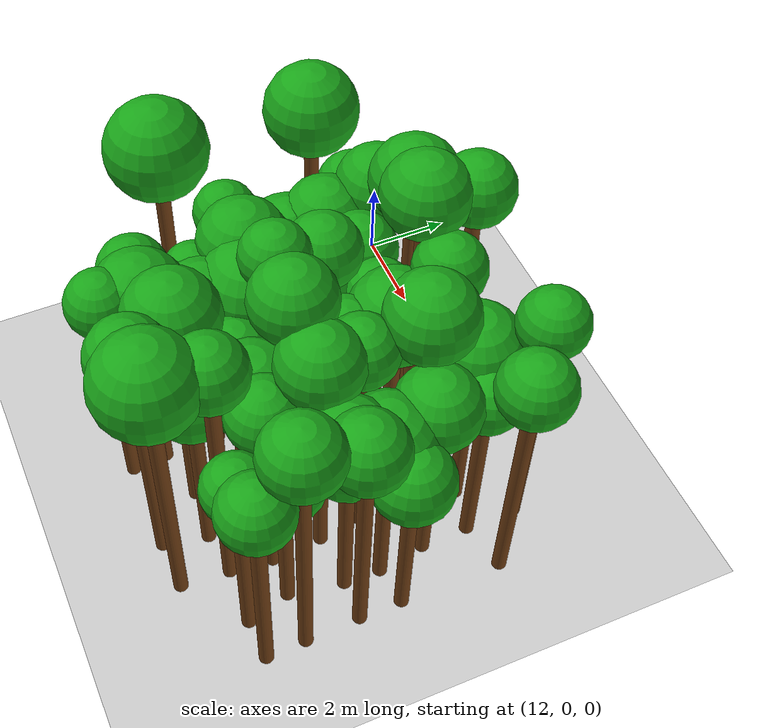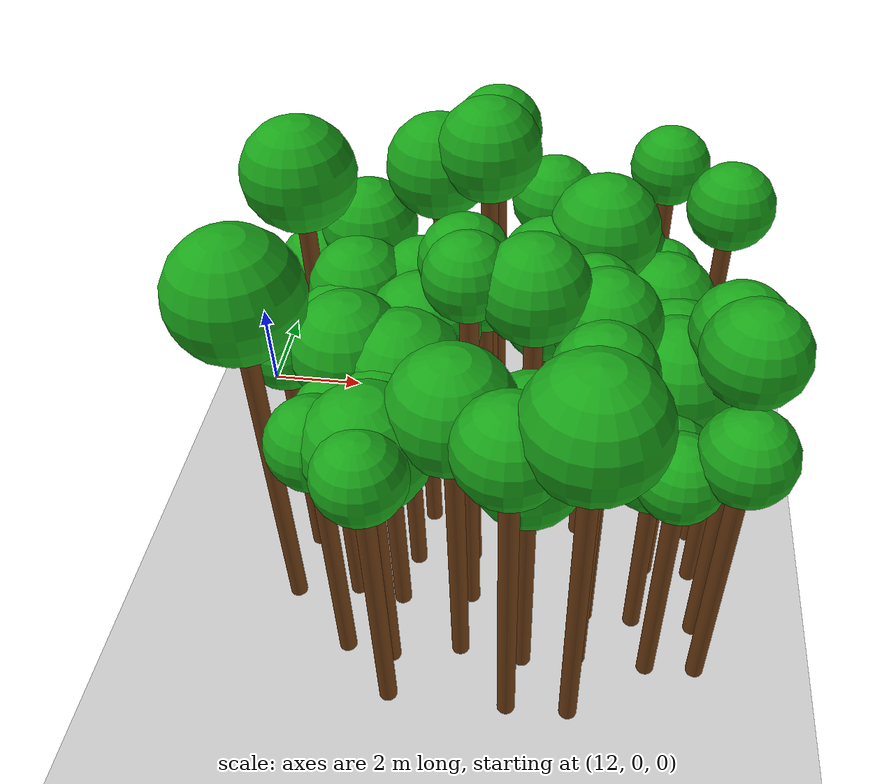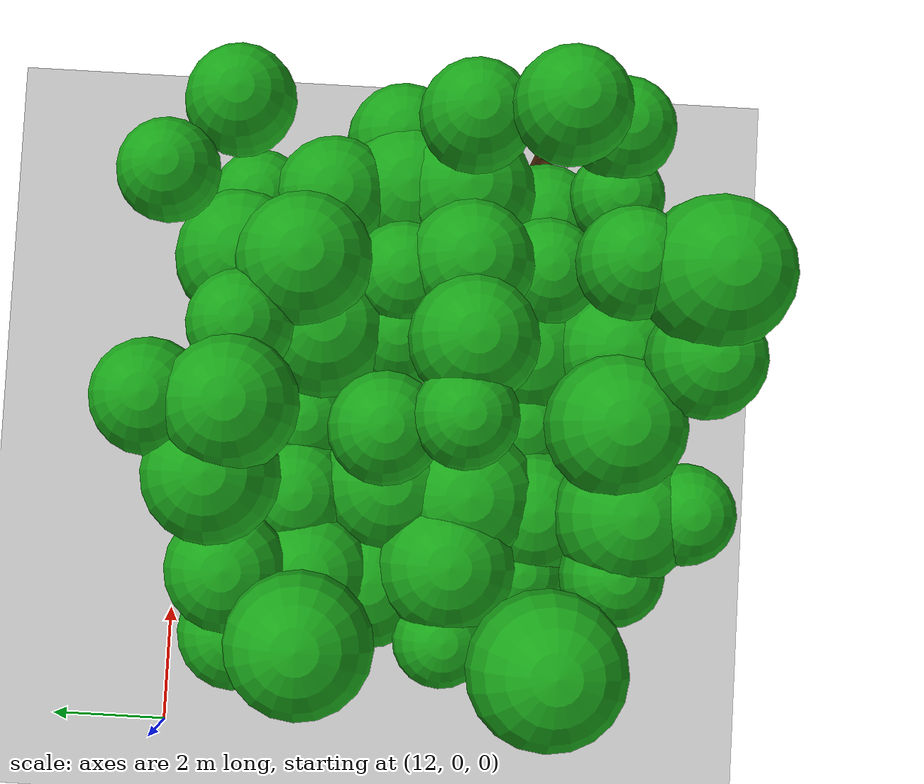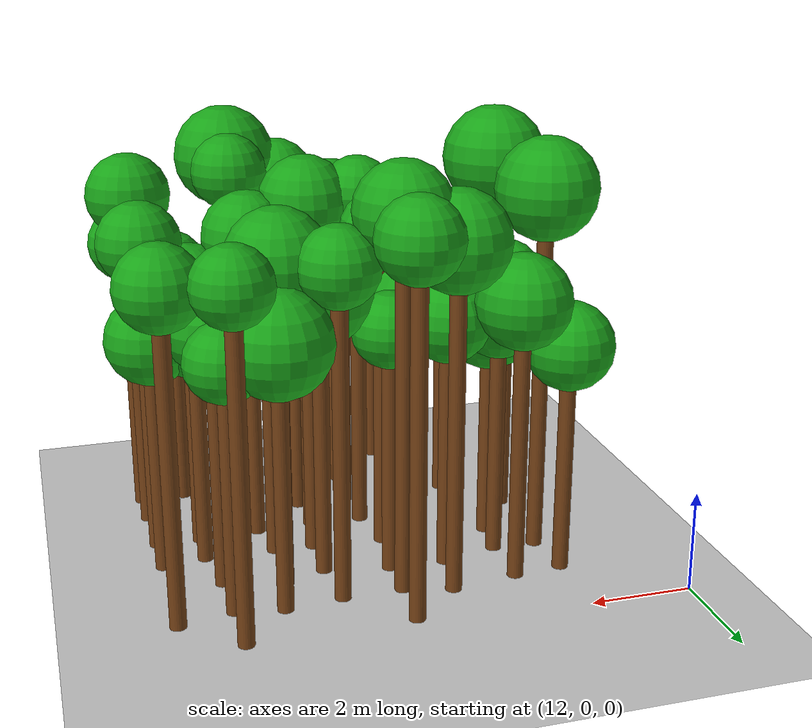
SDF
<sdf version="1.6">
 <world name="forest_world">
  <include><uri>model://sun</uri></include>
  <include><uri>model://ground_plane</uri></include>
  <model name="tree_2199_trunk">
   <static>true</static>
   <pose>14.03 -5.86 3.36 0 0 0</pose>
   <link name="link">
    <collision name="collision">
     <geometry><cylinder><radius>0.16</radius><length>6.73</length></cylinder></geometry>
    </collision>
    <visual name="visual">
     <geometry><cylinder><radius>0.16</radius><length>6.73</length></cylinder></geometry>
     <material><ambient>0.35 0.20 0.05 1</ambient><diffuse>0.45 0.25 0.08 1</diffuse></material>
    </visual>
   </link>
  </model>
  <model name="tree_2199_leaf">
   <static>true</static>
   <pose>14.03 -5.86 7.38 0 0 0</pose>
   <link name="link">
    <collision name="collision"><geometry><sphere><radius>1.08</radius></sphere></geometry></collision>
    <visual name="visual">
     <geometry><sphere><radius>1.08</radius></sphere></geometry>
     <material><ambient>0.05 0.45 0.05 1</ambient><diffuse>0.10 0.65 0.10 1</diffuse></material>
    </visual>
   </link>
  </model>
  <model name="tree_2200_trunk">
   <static>true</static>
   <pose>14.16 -4.58 2.38 0 0 0</pose>
   <link name="link">
    <collision name="collision">
     <geometry><cylinder><radius>0.16</radius><length>4.76</length></cylinder></geometry>
    </collision>
    <visual name="visual">
     <geometry><cylinder><radius>0.16</radius><length>4.76</length></cylinder></geometry>
     <material><ambient>0.35 0.20 0.05 1</ambient><diffuse>0.45 0.25 0.08 1</diffuse></material>
    </visual>
   </link>
  </model>
  <model name="tree_2200_leaf">
   <static>true</static>
   <pose>14.16 -4.58 5.19 0 0 0</pose>
   <link name="link">
    <collision name="collision"><geometry><sphere><radius>0.71</radius></sphere></geometry></collision>
    <visual name="visual">
     <geometry><sphere><radius>0.71</radius></sphere></geometry>
     <material><ambient>0.05 0.45 0.05 1</ambient><diffuse>0.10 0.65 0.10 1</diffuse></material>
    </visual>
   </link>
  </model>
  <model name="tree_2202_trunk">
   <static>true</static>
   <pose>14.17 -2.59 3.40 0 0 0</pose>
   <link name="link">
    <collision name="collision">
     <geometry><cylinder><radius>0.16</radius><length>6.80</length></cylinder></geometry>
    </collision>
    <visual name="visual">
     <geometry><cylinder><radius>0.16</radius><length>6.80</length></cylinder></geometry>
     <material><ambient>0.35 0.20 0.05 1</ambient><diffuse>0.45 0.25 0.08 1</diffuse></material>
    </visual>
   </link>
  </model>
  <model name="tree_2202_leaf">
   <static>true</static>
   <pose>14.17 -2.59 7.40 0 0 0</pose>
   <link name="link">
    <collision name="collision"><geometry><sphere><radius>1.00</radius></sphere></geometry></collision>
    <visual name="visual">
     <geometry><sphere><radius>1.00</radius></sphere></geometry>
     <material><ambient>0.05 0.45 0.05 1</ambient><diffuse>0.10 0.65 0.10 1</diffuse></material>
    </visual>
   </link>
  </model>
  <model name="tree_2203_trunk">
   <static>true</static>
   <pose>14.04 -1.53 2.06 0 0 0</pose>
   <link name="link">
    <collision name="collision">
     <geometry><cylinder><radius>0.16</radius><length>4.12</length></cylinder></geometry>
    </collision>
    <visual name="visual">
     <geometry><cylinder><radius>0.16</radius><length>4.12</length></cylinder></geometry>
     <material><ambient>0.35 0.20 0.05 1</ambient><diffuse>0.45 0.25 0.08 1</diffuse></material>
    </visual>
   </link>
  </model>
  <model name="tree_2203_leaf">
   <static>true</static>
   <pose>14.04 -1.53 4.63 0 0 0</pose>
   <link name="link">
    <collision name="collision"><geometry><sphere><radius>0.86</radius></sphere></geometry></collision>
    <visual name="visual">
     <geometry><sphere><radius>0.86</radius></sphere></geometry>
     <material><ambient>0.05 0.45 0.05 1</ambient><diffuse>0.10 0.65 0.10 1</diffuse></material>
    </visual>
   </link>
  </model>
  <model name="tree_2253_trunk">
   <static>true</static>
   <pose>15.25 -6.96 2.54 0 0 0</pose>
   <link name="link">
    <collision name="collision">
     <geometry><cylinder><radius>0.16</radius><length>5.08</length></cylinder></geometry>
    </collision>
    <visual name="visual">
     <geometry><cylinder><radius>0.16</radius><length>5.08</length></cylinder></geometry>
     <material><ambient>0.35 0.20 0.05 1</ambient><diffuse>0.45 0.25 0.08 1</diffuse></material>
    </visual>
   </link>
  </model>
  <model name="tree_2253_leaf">
   <static>true</static>
   <pose>15.25 -6.96 5.53 0 0 0</pose>
   <link name="link">
    <collision name="collision"><geometry><sphere><radius>0.76</radius></sphere></geometry></collision>
    <visual name="visual">
     <geometry><sphere><radius>0.76</radius></sphere></geometry>
     <material><ambient>0.05 0.45 0.05 1</ambient><diffuse>0.10 0.65 0.10 1</diffuse></material>
    </visual>
   </link>
  </model>
  <model name="tree_2254_trunk">
   <static>true</static>
   <pose>15.20 -5.68 2.18 0 0 0</pose>
   <link name="link">
    <collision name="collision">
     <geometry><cylinder><radius>0.16</radius><length>4.36</length></cylinder></geometry>
    </collision>
    <visual name="visual">
     <geometry><cylinder><radius>0.16</radius><length>4.36</length></cylinder></geometry>
     <material><ambient>0.35 0.20 0.05 1</ambient><diffuse>0.45 0.25 0.08 1</diffuse></material>
    </visual>
   </link>
  </model>
  <model name="tree_2254_leaf">
   <static>true</static>
   <pose>15.20 -5.68 4.79 0 0 0</pose>
   <link name="link">
    <collision name="collision"><geometry><sphere><radius>0.72</radius></sphere></geometry></collision>
    <visual name="visual">
     <geometry><sphere><radius>0.72</radius></sphere></geometry>
     <material><ambient>0.05 0.45 0.05 1</ambient><diffuse>0.10 0.65 0.10 1</diffuse></material>
    </visual>
   </link>
  </model>
  <model name="tree_2255_trunk">
   <static>true</static>
   <pose>15.25 -4.59 2.37 0 0 0</pose>
   <link name="link">
    <collision name="collision">
     <geometry><cylinder><radius>0.16</radius><length>4.74</length></cylinder></geometry>
    </collision>
    <visual name="visual">
     <geometry><cylinder><radius>0.16</radius><length>4.74</length></cylinder></geometry>
     <material><ambient>0.35 0.20 0.05 1</ambient><diffuse>0.45 0.25 0.08 1</diffuse></material>
    </visual>
   </link>
  </model>
  <model name="tree_2255_leaf">
   <static>true</static>
   <pose>15.25 -4.59 5.34 0 0 0</pose>
   <link name="link">
    <collision name="collision"><geometry><sphere><radius>1.01</radius></sphere></geometry></collision>
    <visual name="visual">
     <geometry><sphere><radius>1.01</radius></sphere></geometry>
     <material><ambient>0.05 0.45 0.05 1</ambient><diffuse>0.10 0.65 0.10 1</diffuse></material>
    </visual>
   </link>
  </model>
  <model name="tree_2256_trunk">
   <static>true</static>
   <pose>14.94 -3.46 2.02 0 0 0</pose>
   <link name="link">
    <collision name="collision">
     <geometry><cylinder><radius>0.16</radius><length>4.05</length></cylinder></geometry>
    </collision>
    <visual name="visual">
     <geometry><cylinder><radius>0.16</radius><length>4.05</length></cylinder></geometry>
     <material><ambient>0.35 0.20 0.05 1</ambient><diffuse>0.45 0.25 0.08 1</diffuse></material>
    </visual>
   </link>
  </model>
  <model name="tree_2256_leaf">
   <static>true</static>
   <pose>14.94 -3.46 4.66 0 0 0</pose>
   <link name="link">
    <collision name="collision"><geometry><sphere><radius>1.02</radius></sphere></geometry></collision>
    <visual name="visual">
     <geometry><sphere><radius>1.02</radius></sphere></geometry>
     <material><ambient>0.05 0.45 0.05 1</ambient><diffuse>0.10 0.65 0.10 1</diffuse></material>
    </visual>
   </link>
  </model>
  <model name="tree_2257_trunk">
   <static>true</static>
   <pose>15.04 -2.63 2.26 0 0 0</pose>
   <link name="link">
    <collision name="collision">
     <geometry><cylinder><radius>0.16</radius><length>4.53</length></cylinder></geometry>
    </collision>
    <visual name="visual">
     <geometry><cylinder><radius>0.16</radius><length>4.53</length></cylinder></geometry>
     <material><ambient>0.35 0.20 0.05 1</ambient><diffuse>0.45 0.25 0.08 1</diffuse></material>
    </visual>
   </link>
  </model>
  <model name="tree_2257_leaf">
   <static>true</static>
   <pose>15.04 -2.63 5.10 0 0 0</pose>
   <link name="link">
    <collision name="collision"><geometry><sphere><radius>0.95</radius></sphere></geometry></collision>
    <visual name="visual">
     <geometry><sphere><radius>0.95</radius></sphere></geometry>
     <material><ambient>0.05 0.45 0.05 1</ambient><diffuse>0.10 0.65 0.10 1</diffuse></material>
    </visual>
   </link>
  </model>
  <model name="tree_2258_trunk">
   <static>true</static>
   <pose>15.02 -1.44 2.53 0 0 0</pose>
   <link name="link">
    <collision name="collision">
     <geometry><cylinder><radius>0.16</radius><length>5.06</length></cylinder></geometry>
    </collision>
    <visual name="visual">
     <geometry><cylinder><radius>0.16</radius><length>5.06</length></cylinder></geometry>
     <material><ambient>0.35 0.20 0.05 1</ambient><diffuse>0.45 0.25 0.08 1</diffuse></material>
    </visual>
   </link>
  </model>
  <model name="tree_2258_leaf">
   <static>true</static>
   <pose>15.02 -1.44 5.61 0 0 0</pose>
   <link name="link">
    <collision name="collision"><geometry><sphere><radius>0.91</radius></sphere></geometry></collision>
    <visual name="visual">
     <geometry><sphere><radius>0.91</radius></sphere></geometry>
     <material><ambient>0.05 0.45 0.05 1</ambient><diffuse>0.10 0.65 0.10 1</diffuse></material>
    </visual>
   </link>
  </model>
  <model name="tree_2307_trunk">
   <static>true</static>
   <pose>16.18 -7.88 2.74 0 0 0</pose>
   <link name="link">
    <collision name="collision">
     <geometry><cylinder><radius>0.16</radius><length>5.48</length></cylinder></geometry>
    </collision>
    <visual name="visual">
     <geometry><cylinder><radius>0.16</radius><length>5.48</length></cylinder></geometry>
     <material><ambient>0.35 0.20 0.05 1</ambient><diffuse>0.45 0.25 0.08 1</diffuse></material>
    </visual>
   </link>
  </model>
  <model name="tree_2307_leaf">
   <static>true</static>
   <pose>16.18 -7.88 5.92 0 0 0</pose>
   <link name="link">
    <collision name="collision"><geometry><sphere><radius>0.73</radius></sphere></geometry></collision>
    <visual name="visual">
     <geometry><sphere><radius>0.73</radius></sphere></geometry>
     <material><ambient>0.05 0.45 0.05 1</ambient><diffuse>0.10 0.65 0.10 1</diffuse></material>
    </visual>
   </link>
  </model>
  <model name="tree_2308_trunk">
   <static>true</static>
   <pose>16.11 -7.08 2.53 0 0 0</pose>
   <link name="link">
    <collision name="collision">
     <geometry><cylinder><radius>0.16</radius><length>5.05</length></cylinder></geometry>
    </collision>
    <visual name="visual">
     <geometry><cylinder><radius>0.16</radius><length>5.05</length></cylinder></geometry>
     <material><ambient>0.35 0.20 0.05 1</ambient><diffuse>0.45 0.25 0.08 1</diffuse></material>
    </visual>
   </link>
  </model>
  <model name="tree_2308_leaf">
   <static>true</static>
   <pose>16.11 -7.08 5.67 0 0 0</pose>
   <link name="link">
    <collision name="collision"><geometry><sphere><radius>1.03</radius></sphere></geometry></collision>
    <visual name="visual">
     <geometry><sphere><radius>1.03</radius></sphere></geometry>
     <material><ambient>0.05 0.45 0.05 1</ambient><diffuse>0.10 0.65 0.10 1</diffuse></material>
    </visual>
   </link>
  </model>
  <model name="tree_2309_trunk">
   <static>true</static>
   <pose>16.09 -5.80 2.16 0 0 0</pose>
   <link name="link">
    <collision name="collision">
     <geometry><cylinder><radius>0.16</radius><length>4.33</length></cylinder></geometry>
    </collision>
    <visual name="visual">
     <geometry><cylinder><radius>0.16</radius><length>4.33</length></cylinder></geometry>
     <material><ambient>0.35 0.20 0.05 1</ambient><diffuse>0.45 0.25 0.08 1</diffuse></material>
    </visual>
   </link>
  </model>
  <model name="tree_2309_leaf">
   <static>true</static>
   <pose>16.09 -5.80 4.90 0 0 0</pose>
   <link name="link">
    <collision name="collision"><geometry><sphere><radius>0.96</radius></sphere></geometry></collision>
    <visual name="visual">
     <geometry><sphere><radius>0.96</radius></sphere></geometry>
     <material><ambient>0.05 0.45 0.05 1</ambient><diffuse>0.10 0.65 0.10 1</diffuse></material>
    </visual>
   </link>
  </model>
  <model name="tree_2310_trunk">
   <static>true</static>
   <pose>16.24 -4.83 2.23 0 0 0</pose>
   <link name="link">
    <collision name="collision">
     <geometry><cylinder><radius>0.16</radius><length>4.45</length></cylinder></geometry>
    </collision>
    <visual name="visual">
     <geometry><cylinder><radius>0.16</radius><length>4.45</length></cylinder></geometry>
     <material><ambient>0.35 0.20 0.05 1</ambient><diffuse>0.45 0.25 0.08 1</diffuse></material>
    </visual>
   </link>
  </model>
  <model name="tree_2310_leaf">
   <static>true</static>
   <pose>16.24 -4.83 5.11 0 0 0</pose>
   <link name="link">
    <collision name="collision"><geometry><sphere><radius>1.10</radius></sphere></geometry></collision>
    <visual name="visual">
     <geometry><sphere><radius>1.10</radius></sphere></geometry>
     <material><ambient>0.05 0.45 0.05 1</ambient><diffuse>0.10 0.65 0.10 1</diffuse></material>
    </visual>
   </link>
  </model>
  <model name="tree_2311_trunk">
   <static>true</static>
   <pose>16.38 -3.70 2.26 0 0 0</pose>
   <link name="link">
    <collision name="collision">
     <geometry><cylinder><radius>0.16</radius><length>4.52</length></cylinder></geometry>
    </collision>
    <visual name="visual">
     <geometry><cylinder><radius>0.16</radius><length>4.52</length></cylinder></geometry>
     <material><ambient>0.35 0.20 0.05 1</ambient><diffuse>0.45 0.25 0.08 1</diffuse></material>
    </visual>
   </link>
  </model>
  <model name="tree_2311_leaf">
   <static>true</static>
   <pose>16.38 -3.70 5.13 0 0 0</pose>
   <link name="link">
    <collision name="collision"><geometry><sphere><radius>1.02</radius></sphere></geometry></collision>
    <visual name="visual">
     <geometry><sphere><radius>1.02</radius></sphere></geometry>
     <material><ambient>0.05 0.45 0.05 1</ambient><diffuse>0.10 0.65 0.10 1</diffuse></material>
    </visual>
   </link>
  </model>
  <model name="tree_2312_trunk">
   <static>true</static>
   <pose>16.17 -2.36 2.29 0 0 0</pose>
   <link name="link">
    <collision name="collision">
     <geometry><cylinder><radius>0.16</radius><length>4.59</length></cylinder></geometry>
    </collision>
    <visual name="visual">
     <geometry><cylinder><radius>0.16</radius><length>4.59</length></cylinder></geometry>
     <material><ambient>0.35 0.20 0.05 1</ambient><diffuse>0.45 0.25 0.08 1</diffuse></material>
    </visual>
   </link>
  </model>
  <model name="tree_2312_leaf">
   <static>true</static>
   <pose>16.17 -2.36 5.10 0 0 0</pose>
   <link name="link">
    <collision name="collision"><geometry><sphere><radius>0.85</radius></sphere></geometry></collision>
    <visual name="visual">
     <geometry><sphere><radius>0.85</radius></sphere></geometry>
     <material><ambient>0.05 0.45 0.05 1</ambient><diffuse>0.10 0.65 0.10 1</diffuse></material>
    </visual>
   </link>
  </model>
  <model name="tree_2313_trunk">
   <static>true</static>
   <pose>16.35 -1.25 3.16 0 0 0</pose>
   <link name="link">
    <collision name="collision">
     <geometry><cylinder><radius>0.16</radius><length>6.32</length></cylinder></geometry>
    </collision>
    <visual name="visual">
     <geometry><cylinder><radius>0.16</radius><length>6.32</length></cylinder></geometry>
     <material><ambient>0.35 0.20 0.05 1</ambient><diffuse>0.45 0.25 0.08 1</diffuse></material>
    </visual>
   </link>
  </model>
  <model name="tree_2313_leaf">
   <static>true</static>
   <pose>16.35 -1.25 6.89 0 0 0</pose>
   <link name="link">
    <collision name="collision"><geometry><sphere><radius>0.96</radius></sphere></geometry></collision>
    <visual name="visual">
     <geometry><sphere><radius>0.96</radius></sphere></geometry>
     <material><ambient>0.05 0.45 0.05 1</ambient><diffuse>0.10 0.65 0.10 1</diffuse></material>
    </visual>
   </link>
  </model>
  <model name="tree_2363_trunk">
   <static>true</static>
   <pose>17.35 -6.79 2.85 0 0 0</pose>
   <link name="link">
    <collision name="collision">
     <geometry><cylinder><radius>0.16</radius><length>5.70</length></cylinder></geometry>
    </collision>
    <visual name="visual">
     <geometry><cylinder><radius>0.16</radius><length>5.70</length></cylinder></geometry>
     <material><ambient>0.35 0.20 0.05 1</ambient><diffuse>0.45 0.25 0.08 1</diffuse></material>
    </visual>
   </link>
  </model>
  <model name="tree_2363_leaf">
   <static>true</static>
   <pose>17.35 -6.79 6.31 0 0 0</pose>
   <link name="link">
    <collision name="collision"><geometry><sphere><radius>1.01</radius></sphere></geometry></collision>
    <visual name="visual">
     <geometry><sphere><radius>1.01</radius></sphere></geometry>
     <material><ambient>0.05 0.45 0.05 1</ambient><diffuse>0.10 0.65 0.10 1</diffuse></material>
    </visual>
   </link>
  </model>
  <model name="tree_2364_trunk">
   <static>true</static>
   <pose>17.41 -5.63 2.06 0 0 0</pose>
   <link name="link">
    <collision name="collision">
     <geometry><cylinder><radius>0.16</radius><length>4.11</length></cylinder></geometry>
    </collision>
    <visual name="visual">
     <geometry><cylinder><radius>0.16</radius><length>4.11</length></cylinder></geometry>
     <material><ambient>0.35 0.20 0.05 1</ambient><diffuse>0.45 0.25 0.08 1</diffuse></material>
    </visual>
   </link>
  </model>
  <model name="tree_2364_leaf">
   <static>true</static>
   <pose>17.41 -5.63 4.62 0 0 0</pose>
   <link name="link">
    <collision name="collision"><geometry><sphere><radius>0.85</radius></sphere></geometry></collision>
    <visual name="visual">
     <geometry><sphere><radius>0.85</radius></sphere></geometry>
     <material><ambient>0.05 0.45 0.05 1</ambient><diffuse>0.10 0.65 0.10 1</diffuse></material>
    </visual>
   </link>
  </model>
  <model name="tree_2365_trunk">
   <static>true</static>
   <pose>17.32 -4.65 3.32 0 0 0</pose>
   <link name="link">
    <collision name="collision">
     <geometry><cylinder><radius>0.16</radius><length>6.64</length></cylinder></geometry>
    </collision>
    <visual name="visual">
     <geometry><cylinder><radius>0.16</radius><length>6.64</length></cylinder></geometry>
     <material><ambient>0.35 0.20 0.05 1</ambient><diffuse>0.45 0.25 0.08 1</diffuse></material>
    </visual>
   </link>
  </model>
  <model name="tree_2365_leaf">
   <static>true</static>
   <pose>17.32 -4.65 7.08 0 0 0</pose>
   <link name="link">
    <collision name="collision"><geometry><sphere><radius>0.73</radius></sphere></geometry></collision>
    <visual name="visual">
     <geometry><sphere><radius>0.73</radius></sphere></geometry>
     <material><ambient>0.05 0.45 0.05 1</ambient><diffuse>0.10 0.65 0.10 1</diffuse></material>
    </visual>
   </link>
  </model>
  <model name="tree_2366_trunk">
   <static>true</static>
   <pose>17.13 -3.58 3.05 0 0 0</pose>
   <link name="link">
    <collision name="collision">
     <geometry><cylinder><radius>0.16</radius><length>6.10</length></cylinder></geometry>
    </collision>
    <visual name="visual">
     <geometry><cylinder><radius>0.16</radius><length>6.10</length></cylinder></geometry>
     <material><ambient>0.35 0.20 0.05 1</ambient><diffuse>0.45 0.25 0.08 1</diffuse></material>
    </visual>
   </link>
  </model>
  <model name="tree_2366_leaf">
   <static>true</static>
   <pose>17.13 -3.58 6.58 0 0 0</pose>
   <link name="link">
    <collision name="collision"><geometry><sphere><radius>0.80</radius></sphere></geometry></collision>
    <visual name="visual">
     <geometry><sphere><radius>0.80</radius></sphere></geometry>
     <material><ambient>0.05 0.45 0.05 1</ambient><diffuse>0.10 0.65 0.10 1</diffuse></material>
    </visual>
   </link>
  </model>
  <model name="tree_2367_trunk">
   <static>true</static>
   <pose>17.29 -2.40 2.26 0 0 0</pose>
   <link name="link">
    <collision name="collision">
     <geometry><cylinder><radius>0.16</radius><length>4.52</length></cylinder></geometry>
    </collision>
    <visual name="visual">
     <geometry><cylinder><radius>0.16</radius><length>4.52</length></cylinder></geometry>
     <material><ambient>0.35 0.20 0.05 1</ambient><diffuse>0.45 0.25 0.08 1</diffuse></material>
    </visual>
   </link>
  </model>
  <model name="tree_2367_leaf">
   <static>true</static>
   <pose>17.29 -2.40 4.97 0 0 0</pose>
   <link name="link">
    <collision name="collision"><geometry><sphere><radius>0.74</radius></sphere></geometry></collision>
    <visual name="visual">
     <geometry><sphere><radius>0.74</radius></sphere></geometry>
     <material><ambient>0.05 0.45 0.05 1</ambient><diffuse>0.10 0.65 0.10 1</diffuse></material>
    </visual>
   </link>
  </model>
  <model name="tree_2368_trunk">
   <static>true</static>
   <pose>17.29 -1.50 3.44 0 0 0</pose>
   <link name="link">
    <collision name="collision">
     <geometry><cylinder><radius>0.16</radius><length>6.87</length></cylinder></geometry>
    </collision>
    <visual name="visual">
     <geometry><cylinder><radius>0.16</radius><length>6.87</length></cylinder></geometry>
     <material><ambient>0.35 0.20 0.05 1</ambient><diffuse>0.45 0.25 0.08 1</diffuse></material>
    </visual>
   </link>
  </model>
  <model name="tree_2368_leaf">
   <static>true</static>
   <pose>17.29 -1.50 7.43 0 0 0</pose>
   <link name="link">
    <collision name="collision"><geometry><sphere><radius>0.93</radius></sphere></geometry></collision>
    <visual name="visual">
     <geometry><sphere><radius>0.93</radius></sphere></geometry>
     <material><ambient>0.05 0.45 0.05 1</ambient><diffuse>0.10 0.65 0.10 1</diffuse></material>
    </visual>
   </link>
  </model>
  <model name="tree_2369_trunk">
   <static>true</static>
   <pose>17.34 -0.39 3.36 0 0 0</pose>
   <link name="link">
    <collision name="collision">
     <geometry><cylinder><radius>0.16</radius><length>6.72</length></cylinder></geometry>
    </collision>
    <visual name="visual">
     <geometry><cylinder><radius>0.16</radius><length>6.72</length></cylinder></geometry>
     <material><ambient>0.35 0.20 0.05 1</ambient><diffuse>0.45 0.25 0.08 1</diffuse></material>
    </visual>
   </link>
  </model>
  <model name="tree_2369_leaf">
   <static>true</static>
   <pose>17.34 -0.39 7.20 0 0 0</pose>
   <link name="link">
    <collision name="collision"><geometry><sphere><radius>0.80</radius></sphere></geometry></collision>
    <visual name="visual">
     <geometry><sphere><radius>0.80</radius></sphere></geometry>
     <material><ambient>0.05 0.45 0.05 1</ambient><diffuse>0.10 0.65 0.10 1</diffuse></material>
    </visual>
   </link>
  </model>
  <model name="tree_2417_trunk">
   <static>true</static>
   <pose>18.31 -7.90 3.13 0 0 0</pose>
   <link name="link">
    <collision name="collision">
     <geometry><cylinder><radius>0.16</radius><length>6.26</length></cylinder></geometry>
    </collision>
    <visual name="visual">
     <geometry><cylinder><radius>0.16</radius><length>6.26</length></cylinder></geometry>
     <material><ambient>0.35 0.20 0.05 1</ambient><diffuse>0.45 0.25 0.08 1</diffuse></material>
    </visual>
   </link>
  </model>
  <model name="tree_2417_leaf">
   <static>true</static>
   <pose>18.31 -7.90 6.77 0 0 0</pose>
   <link name="link">
    <collision name="collision"><geometry><sphere><radius>0.84</radius></sphere></geometry></collision>
    <visual name="visual">
     <geometry><sphere><radius>0.84</radius></sphere></geometry>
     <material><ambient>0.05 0.45 0.05 1</ambient><diffuse>0.10 0.65 0.10 1</diffuse></material>
    </visual>
   </link>
  </model>
  <model name="tree_2418_trunk">
   <static>true</static>
   <pose>18.50 -6.90 2.36 0 0 0</pose>
   <link name="link">
    <collision name="collision">
     <geometry><cylinder><radius>0.16</radius><length>4.73</length></cylinder></geometry>
    </collision>
    <visual name="visual">
     <geometry><cylinder><radius>0.16</radius><length>4.73</length></cylinder></geometry>
     <material><ambient>0.35 0.20 0.05 1</ambient><diffuse>0.45 0.25 0.08 1</diffuse></material>
    </visual>
   </link>
  </model>
  <model name="tree_2418_leaf">
   <static>true</static>
   <pose>18.50 -6.90 5.28 0 0 0</pose>
   <link name="link">
    <collision name="collision"><geometry><sphere><radius>0.92</radius></sphere></geometry></collision>
    <visual name="visual">
     <geometry><sphere><radius>0.92</radius></sphere></geometry>
     <material><ambient>0.05 0.45 0.05 1</ambient><diffuse>0.10 0.65 0.10 1</diffuse></material>
    </visual>
   </link>
  </model>
  <model name="tree_2419_trunk">
   <static>true</static>
   <pose>18.44 -5.64 2.08 0 0 0</pose>
   <link name="link">
    <collision name="collision">
     <geometry><cylinder><radius>0.16</radius><length>4.15</length></cylinder></geometry>
    </collision>
    <visual name="visual">
     <geometry><cylinder><radius>0.16</radius><length>4.15</length></cylinder></geometry>
     <material><ambient>0.35 0.20 0.05 1</ambient><diffuse>0.45 0.25 0.08 1</diffuse></material>
    </visual>
   </link>
  </model>
  <model name="tree_2419_leaf">
   <static>true</static>
   <pose>18.44 -5.64 4.77 0 0 0</pose>
   <link name="link">
    <collision name="collision"><geometry><sphere><radius>1.03</radius></sphere></geometry></collision>
    <visual name="visual">
     <geometry><sphere><radius>1.03</radius></sphere></geometry>
     <material><ambient>0.05 0.45 0.05 1</ambient><diffuse>0.10 0.65 0.10 1</diffuse></material>
    </visual>
   </link>
  </model>
  <model name="tree_2420_trunk">
   <static>true</static>
   <pose>18.37 -4.71 3.22 0 0 0</pose>
   <link name="link">
    <collision name="collision">
     <geometry><cylinder><radius>0.16</radius><length>6.43</length></cylinder></geometry>
    </collision>
    <visual name="visual">
     <geometry><cylinder><radius>0.16</radius><length>6.43</length></cylinder></geometry>
     <material><ambient>0.35 0.20 0.05 1</ambient><diffuse>0.45 0.25 0.08 1</diffuse></material>
    </visual>
   </link>
  </model>
  <model name="tree_2420_leaf">
   <static>true</static>
   <pose>18.37 -4.71 6.97 0 0 0</pose>
   <link name="link">
    <collision name="collision"><geometry><sphere><radius>0.90</radius></sphere></geometry></collision>
    <visual name="visual">
     <geometry><sphere><radius>0.90</radius></sphere></geometry>
     <material><ambient>0.05 0.45 0.05 1</ambient><diffuse>0.10 0.65 0.10 1</diffuse></material>
    </visual>
   </link>
  </model>
  <model name="tree_2421_trunk">
   <static>true</static>
   <pose>18.55 -3.69 2.58 0 0 0</pose>
   <link name="link">
    <collision name="collision">
     <geometry><cylinder><radius>0.16</radius><length>5.15</length></cylinder></geometry>
    </collision>
    <visual name="visual">
     <geometry><cylinder><radius>0.16</radius><length>5.15</length></cylinder></geometry>
     <material><ambient>0.35 0.20 0.05 1</ambient><diffuse>0.45 0.25 0.08 1</diffuse></material>
    </visual>
   </link>
  </model>
  <model name="tree_2421_leaf">
   <static>true</static>
   <pose>18.55 -3.69 5.64 0 0 0</pose>
   <link name="link">
    <collision name="collision"><geometry><sphere><radius>0.81</radius></sphere></geometry></collision>
    <visual name="visual">
     <geometry><sphere><radius>0.81</radius></sphere></geometry>
     <material><ambient>0.05 0.45 0.05 1</ambient><diffuse>0.10 0.65 0.10 1</diffuse></material>
    </visual>
   </link>
  </model>
  <model name="tree_2422_trunk">
   <static>true</static>
   <pose>18.57 -2.65 2.56 0 0 0</pose>
   <link name="link">
    <collision name="collision">
     <geometry><cylinder><radius>0.16</radius><length>5.12</length></cylinder></geometry>
    </collision>
    <visual name="visual">
     <geometry><cylinder><radius>0.16</radius><length>5.12</length></cylinder></geometry>
     <material><ambient>0.35 0.20 0.05 1</ambient><diffuse>0.45 0.25 0.08 1</diffuse></material>
    </visual>
   </link>
  </model>
  <model name="tree_2422_leaf">
   <static>true</static>
   <pose>18.57 -2.65 5.74 0 0 0</pose>
   <link name="link">
    <collision name="collision"><geometry><sphere><radius>1.02</radius></sphere></geometry></collision>
    <visual name="visual">
     <geometry><sphere><radius>1.02</radius></sphere></geometry>
     <material><ambient>0.05 0.45 0.05 1</ambient><diffuse>0.10 0.65 0.10 1</diffuse></material>
    </visual>
   </link>
  </model>
  <model name="tree_2423_trunk">
   <static>true</static>
   <pose>18.47 -1.50 3.03 0 0 0</pose>
   <link name="link">
    <collision name="collision">
     <geometry><cylinder><radius>0.16</radius><length>6.06</length></cylinder></geometry>
    </collision>
    <visual name="visual">
     <geometry><cylinder><radius>0.16</radius><length>6.06</length></cylinder></geometry>
     <material><ambient>0.35 0.20 0.05 1</ambient><diffuse>0.45 0.25 0.08 1</diffuse></material>
    </visual>
   </link>
  </model>
  <model name="tree_2423_leaf">
   <static>true</static>
   <pose>18.47 -1.50 6.52 0 0 0</pose>
   <link name="link">
    <collision name="collision"><geometry><sphere><radius>0.77</radius></sphere></geometry></collision>
    <visual name="visual">
     <geometry><sphere><radius>0.77</radius></sphere></geometry>
     <material><ambient>0.05 0.45 0.05 1</ambient><diffuse>0.10 0.65 0.10 1</diffuse></material>
    </visual>
   </link>
  </model>
  <model name="tree_2472_trunk">
   <static>true</static>
   <pose>19.41 -7.87 3.33 0 0 0</pose>
   <link name="link">
    <collision name="collision">
     <geometry><cylinder><radius>0.16</radius><length>6.67</length></cylinder></geometry>
    </collision>
    <visual name="visual">
     <geometry><cylinder><radius>0.16</radius><length>6.67</length></cylinder></geometry>
     <material><ambient>0.35 0.20 0.05 1</ambient><diffuse>0.45 0.25 0.08 1</diffuse></material>
    </visual>
   </link>
  </model>
  <model name="tree_2472_leaf">
   <static>true</static>
   <pose>19.41 -7.87 7.31 0 0 0</pose>
   <link name="link">
    <collision name="collision"><geometry><sphere><radius>1.06</radius></sphere></geometry></collision>
    <visual name="visual">
     <geometry><sphere><radius>1.06</radius></sphere></geometry>
     <material><ambient>0.05 0.45 0.05 1</ambient><diffuse>0.10 0.65 0.10 1</diffuse></material>
    </visual>
   </link>
  </model>
  <model name="tree_2473_trunk">
   <static>true</static>
   <pose>19.50 -6.77 3.36 0 0 0</pose>
   <link name="link">
    <collision name="collision">
     <geometry><cylinder><radius>0.16</radius><length>6.72</length></cylinder></geometry>
    </collision>
    <visual name="visual">
     <geometry><cylinder><radius>0.16</radius><length>6.72</length></cylinder></geometry>
     <material><ambient>0.35 0.20 0.05 1</ambient><diffuse>0.45 0.25 0.08 1</diffuse></material>
    </visual>
   </link>
  </model>
  <model name="tree_2473_leaf">
   <static>true</static>
   <pose>19.50 -6.77 7.19 0 0 0</pose>
   <link name="link">
    <collision name="collision"><geometry><sphere><radius>0.78</radius></sphere></geometry></collision>
    <visual name="visual">
     <geometry><sphere><radius>0.78</radius></sphere></geometry>
     <material><ambient>0.05 0.45 0.05 1</ambient><diffuse>0.10 0.65 0.10 1</diffuse></material>
    </visual>
   </link>
  </model>
  <model name="tree_2474_trunk">
   <static>true</static>
   <pose>19.59 -5.81 2.50 0 0 0</pose>
   <link name="link">
    <collision name="collision">
     <geometry><cylinder><radius>0.16</radius><length>5.01</length></cylinder></geometry>
    </collision>
    <visual name="visual">
     <geometry><cylinder><radius>0.16</radius><length>5.01</length></cylinder></geometry>
     <material><ambient>0.35 0.20 0.05 1</ambient><diffuse>0.45 0.25 0.08 1</diffuse></material>
    </visual>
   </link>
  </model>
  <model name="tree_2474_leaf">
   <static>true</static>
   <pose>19.59 -5.81 5.49 0 0 0</pose>
   <link name="link">
    <collision name="collision"><geometry><sphere><radius>0.80</radius></sphere></geometry></collision>
    <visual name="visual">
     <geometry><sphere><radius>0.80</radius></sphere></geometry>
     <material><ambient>0.05 0.45 0.05 1</ambient><diffuse>0.10 0.65 0.10 1</diffuse></material>
    </visual>
   </link>
  </model>
  <model name="tree_2475_trunk">
   <static>true</static>
   <pose>19.52 -4.65 2.91 0 0 0</pose>
   <link name="link">
    <collision name="collision">
     <geometry><cylinder><radius>0.16</radius><length>5.81</length></cylinder></geometry>
    </collision>
    <visual name="visual">
     <geometry><cylinder><radius>0.16</radius><length>5.81</length></cylinder></geometry>
     <material><ambient>0.35 0.20 0.05 1</ambient><diffuse>0.45 0.25 0.08 1</diffuse></material>
    </visual>
   </link>
  </model>
  <model name="tree_2475_leaf">
   <static>true</static>
   <pose>19.52 -4.65 6.35 0 0 0</pose>
   <link name="link">
    <collision name="collision"><geometry><sphere><radius>0.90</radius></sphere></geometry></collision>
    <visual name="visual">
     <geometry><sphere><radius>0.90</radius></sphere></geometry>
     <material><ambient>0.05 0.45 0.05 1</ambient><diffuse>0.10 0.65 0.10 1</diffuse></material>
    </visual>
   </link>
  </model>
  <model name="tree_2476_trunk">
   <static>true</static>
   <pose>19.34 -3.73 2.81 0 0 0</pose>
   <link name="link">
    <collision name="collision">
     <geometry><cylinder><radius>0.16</radius><length>5.62</length></cylinder></geometry>
    </collision>
    <visual name="visual">
     <geometry><cylinder><radius>0.16</radius><length>5.62</length></cylinder></geometry>
     <material><ambient>0.35 0.20 0.05 1</ambient><diffuse>0.45 0.25 0.08 1</diffuse></material>
    </visual>
   </link>
  </model>
  <model name="tree_2476_leaf">
   <static>true</static>
   <pose>19.34 -3.73 6.08 0 0 0</pose>
   <link name="link">
    <collision name="collision"><geometry><sphere><radius>0.77</radius></sphere></geometry></collision>
    <visual name="visual">
     <geometry><sphere><radius>0.77</radius></sphere></geometry>
     <material><ambient>0.05 0.45 0.05 1</ambient><diffuse>0.10 0.65 0.10 1</diffuse></material>
    </visual>
   </link>
  </model>
  <model name="tree_2477_trunk">
   <static>true</static>
   <pose>19.40 -2.33 2.96 0 0 0</pose>
   <link name="link">
    <collision name="collision">
     <geometry><cylinder><radius>0.16</radius><length>5.92</length></cylinder></geometry>
    </collision>
    <visual name="visual">
     <geometry><cylinder><radius>0.16</radius><length>5.92</length></cylinder></geometry>
     <material><ambient>0.35 0.20 0.05 1</ambient><diffuse>0.45 0.25 0.08 1</diffuse></material>
    </visual>
   </link>
  </model>
  <model name="tree_2477_leaf">
   <static>true</static>
   <pose>19.40 -2.33 6.50 0 0 0</pose>
   <link name="link">
    <collision name="collision"><geometry><sphere><radius>0.97</radius></sphere></geometry></collision>
    <visual name="visual">
     <geometry><sphere><radius>0.97</radius></sphere></geometry>
     <material><ambient>0.05 0.45 0.05 1</ambient><diffuse>0.10 0.65 0.10 1</diffuse></material>
    </visual>
   </link>
  </model>
  <model name="tree_2478_trunk">
   <static>true</static>
   <pose>19.60 -1.38 2.32 0 0 0</pose>
   <link name="link">
    <collision name="collision">
     <geometry><cylinder><radius>0.16</radius><length>4.64</length></cylinder></geometry>
    </collision>
    <visual name="visual">
     <geometry><cylinder><radius>0.16</radius><length>4.64</length></cylinder></geometry>
     <material><ambient>0.35 0.20 0.05 1</ambient><diffuse>0.45 0.25 0.08 1</diffuse></material>
    </visual>
   </link>
  </model>
  <model name="tree_2478_leaf">
   <static>true</static>
   <pose>19.60 -1.38 5.25 0 0 0</pose>
   <link name="link">
    <collision name="collision"><geometry><sphere><radius>1.02</radius></sphere></geometry></collision>
    <visual name="visual">
     <geometry><sphere><radius>1.02</radius></sphere></geometry>
     <material><ambient>0.05 0.45 0.05 1</ambient><diffuse>0.10 0.65 0.10 1</diffuse></material>
    </visual>
   </link>
  </model>
  <model name="tree_2528_trunk">
   <static>true</static>
   <pose>20.77 -6.82 2.43 0 0 0</pose>
   <link name="link">
    <collision name="collision">
     <geometry><cylinder><radius>0.16</radius><length>4.87</length></cylinder></geometry>
    </collision>
    <visual name="visual">
     <geometry><cylinder><radius>0.16</radius><length>4.87</length></cylinder></geometry>
     <material><ambient>0.35 0.20 0.05 1</ambient><diffuse>0.45 0.25 0.08 1</diffuse></material>
    </visual>
   </link>
  </model>
  <model name="tree_2528_leaf">
   <static>true</static>
   <pose>20.77 -6.82 5.29 0 0 0</pose>
   <link name="link">
    <collision name="collision"><geometry><sphere><radius>0.71</radius></sphere></geometry></collision>
    <visual name="visual">
     <geometry><sphere><radius>0.71</radius></sphere></geometry>
     <material><ambient>0.05 0.45 0.05 1</ambient><diffuse>0.10 0.65 0.10 1</diffuse></material>
    </visual>
   </link>
  </model>
  <model name="tree_2529_trunk">
   <static>true</static>
   <pose>20.50 -5.83 2.02 0 0 0</pose>
   <link name="link">
    <collision name="collision">
     <geometry><cylinder><radius>0.16</radius><length>4.03</length></cylinder></geometry>
    </collision>
    <visual name="visual">
     <geometry><cylinder><radius>0.16</radius><length>4.03</length></cylinder></geometry>
     <material><ambient>0.35 0.20 0.05 1</ambient><diffuse>0.45 0.25 0.08 1</diffuse></material>
    </visual>
   </link>
  </model>
  <model name="tree_2529_leaf">
   <static>true</static>
   <pose>20.50 -5.83 4.57 0 0 0</pose>
   <link name="link">
    <collision name="collision"><geometry><sphere><radius>0.89</radius></sphere></geometry></collision>
    <visual name="visual">
     <geometry><sphere><radius>0.89</radius></sphere></geometry>
     <material><ambient>0.05 0.45 0.05 1</ambient><diffuse>0.10 0.65 0.10 1</diffuse></material>
    </visual>
   </link>
  </model>
  <model name="tree_2530_trunk">
   <static>true</static>
   <pose>20.72 -4.60 2.32 0 0 0</pose>
   <link name="link">
    <collision name="collision">
     <geometry><cylinder><radius>0.16</radius><length>4.64</length></cylinder></geometry>
    </collision>
    <visual name="visual">
     <geometry><cylinder><radius>0.16</radius><length>4.64</length></cylinder></geometry>
     <material><ambient>0.35 0.20 0.05 1</ambient><diffuse>0.45 0.25 0.08 1</diffuse></material>
    </visual>
   </link>
  </model>
  <model name="tree_2530_leaf">
   <static>true</static>
   <pose>20.72 -4.60 5.26 0 0 0</pose>
   <link name="link">
    <collision name="collision"><geometry><sphere><radius>1.03</radius></sphere></geometry></collision>
    <visual name="visual">
     <geometry><sphere><radius>1.03</radius></sphere></geometry>
     <material><ambient>0.05 0.45 0.05 1</ambient><diffuse>0.10 0.65 0.10 1</diffuse></material>
    </visual>
   </link>
  </model>
  <model name="tree_2531_trunk">
   <static>true</static>
   <pose>20.74 -3.77 2.17 0 0 0</pose>
   <link name="link">
    <collision name="collision">
     <geometry><cylinder><radius>0.16</radius><length>4.34</length></cylinder></geometry>
    </collision>
    <visual name="visual">
     <geometry><cylinder><radius>0.16</radius><length>4.34</length></cylinder></geometry>
     <material><ambient>0.35 0.20 0.05 1</ambient><diffuse>0.45 0.25 0.08 1</diffuse></material>
    </visual>
   </link>
  </model>
  <model name="tree_2531_leaf">
   <static>true</static>
   <pose>20.74 -3.77 4.96 0 0 0</pose>
   <link name="link">
    <collision name="collision"><geometry><sphere><radius>1.04</radius></sphere></geometry></collision>
    <visual name="visual">
     <geometry><sphere><radius>1.04</radius></sphere></geometry>
     <material><ambient>0.05 0.45 0.05 1</ambient><diffuse>0.10 0.65 0.10 1</diffuse></material>
    </visual>
   </link>
  </model>
  <model name="tree_2532_trunk">
   <static>true</static>
   <pose>20.56 -2.67 2.35 0 0 0</pose>
   <link name="link">
    <collision name="collision">
     <geometry><cylinder><radius>0.16</radius><length>4.70</length></cylinder></geometry>
    </collision>
    <visual name="visual">
     <geometry><cylinder><radius>0.16</radius><length>4.70</length></cylinder></geometry>
     <material><ambient>0.35 0.20 0.05 1</ambient><diffuse>0.45 0.25 0.08 1</diffuse></material>
    </visual>
   </link>
  </model>
  <model name="tree_2532_leaf">
   <static>true</static>
   <pose>20.56 -2.67 5.25 0 0 0</pose>
   <link name="link">
    <collision name="collision"><geometry><sphere><radius>0.91</radius></sphere></geometry></collision>
    <visual name="visual">
     <geometry><sphere><radius>0.91</radius></sphere></geometry>
     <material><ambient>0.05 0.45 0.05 1</ambient><diffuse>0.10 0.65 0.10 1</diffuse></material>
    </visual>
   </link>
  </model>
  <model name="tree_2533_trunk">
   <static>true</static>
   <pose>20.53 -1.56 2.24 0 0 0</pose>
   <link name="link">
    <collision name="collision">
     <geometry><cylinder><radius>0.16</radius><length>4.49</length></cylinder></geometry>
    </collision>
    <visual name="visual">
     <geometry><cylinder><radius>0.16</radius><length>4.49</length></cylinder></geometry>
     <material><ambient>0.35 0.20 0.05 1</ambient><diffuse>0.45 0.25 0.08 1</diffuse></material>
    </visual>
   </link>
  </model>
  <model name="tree_2533_leaf">
   <static>true</static>
   <pose>20.53 -1.56 4.94 0 0 0</pose>
   <link name="link">
    <collision name="collision"><geometry><sphere><radius>0.75</radius></sphere></geometry></collision>
    <visual name="visual">
     <geometry><sphere><radius>0.75</radius></sphere></geometry>
     <material><ambient>0.05 0.45 0.05 1</ambient><diffuse>0.10 0.65 0.10 1</diffuse></material>
    </visual>
   </link>
  </model>
  <model name="tree_2534_trunk">
   <static>true</static>
   <pose>20.52 -0.39 3.10 0 0 0</pose>
   <link name="link">
    <collision name="collision">
     <geometry><cylinder><radius>0.16</radius><length>6.21</length></cylinder></geometry>
    </collision>
    <visual name="visual">
     <geometry><cylinder><radius>0.16</radius><length>6.21</length></cylinder></geometry>
     <material><ambient>0.35 0.20 0.05 1</ambient><diffuse>0.45 0.25 0.08 1</diffuse></material>
    </visual>
   </link>
  </model>
  <model name="tree_2534_leaf">
   <static>true</static>
   <pose>20.52 -0.39 6.65 0 0 0</pose>
   <link name="link">
    <collision name="collision"><geometry><sphere><radius>0.73</radius></sphere></geometry></collision>
    <visual name="visual">
     <geometry><sphere><radius>0.73</radius></sphere></geometry>
     <material><ambient>0.05 0.45 0.05 1</ambient><diffuse>0.10 0.65 0.10 1</diffuse></material>
    </visual>
   </link>
  </model>
  <model name="tree_2583_trunk">
   <static>true</static>
   <pose>21.67 -6.78 2.68 0 0 0</pose>
   <link name="link">
    <collision name="collision">
     <geometry><cylinder><radius>0.16</radius><length>5.36</length></cylinder></geometry>
    </collision>
    <visual name="visual">
     <geometry><cylinder><radius>0.16</radius><length>5.36</length></cylinder></geometry>
     <material><ambient>0.35 0.20 0.05 1</ambient><diffuse>0.45 0.25 0.08 1</diffuse></material>
    </visual>
   </link>
  </model>
  <model name="tree_2583_leaf">
   <static>true</static>
   <pose>21.67 -6.78 5.82 0 0 0</pose>
   <link name="link">
    <collision name="collision"><geometry><sphere><radius>0.77</radius></sphere></geometry></collision>
    <visual name="visual">
     <geometry><sphere><radius>0.77</radius></sphere></geometry>
     <material><ambient>0.05 0.45 0.05 1</ambient><diffuse>0.10 0.65 0.10 1</diffuse></material>
    </visual>
   </link>
  </model>
  <model name="tree_2584_trunk">
   <static>true</static>
   <pose>21.64 -5.88 3.26 0 0 0</pose>
   <link name="link">
    <collision name="collision">
     <geometry><cylinder><radius>0.16</radius><length>6.52</length></cylinder></geometry>
    </collision>
    <visual name="visual">
     <geometry><cylinder><radius>0.16</radius><length>6.52</length></cylinder></geometry>
     <material><ambient>0.35 0.20 0.05 1</ambient><diffuse>0.45 0.25 0.08 1</diffuse></material>
    </visual>
   </link>
  </model>
  <model name="tree_2584_leaf">
   <static>true</static>
   <pose>21.64 -5.88 7.02 0 0 0</pose>
   <link name="link">
    <collision name="collision"><geometry><sphere><radius>0.83</radius></sphere></geometry></collision>
    <visual name="visual">
     <geometry><sphere><radius>0.83</radius></sphere></geometry>
     <material><ambient>0.05 0.45 0.05 1</ambient><diffuse>0.10 0.65 0.10 1</diffuse></material>
    </visual>
   </link>
  </model>
  <model name="tree_2585_trunk">
   <static>true</static>
   <pose>21.60 -4.63 2.93 0 0 0</pose>
   <link name="link">
    <collision name="collision">
     <geometry><cylinder><radius>0.16</radius><length>5.87</length></cylinder></geometry>
    </collision>
    <visual name="visual">
     <geometry><cylinder><radius>0.16</radius><length>5.87</length></cylinder></geometry>
     <material><ambient>0.35 0.20 0.05 1</ambient><diffuse>0.45 0.25 0.08 1</diffuse></material>
    </visual>
   </link>
  </model>
  <model name="tree_2585_leaf">
   <static>true</static>
   <pose>21.60 -4.63 6.36 0 0 0</pose>
   <link name="link">
    <collision name="collision"><geometry><sphere><radius>0.82</radius></sphere></geometry></collision>
    <visual name="visual">
     <geometry><sphere><radius>0.82</radius></sphere></geometry>
     <material><ambient>0.05 0.45 0.05 1</ambient><diffuse>0.10 0.65 0.10 1</diffuse></material>
    </visual>
   </link>
  </model>
  <model name="tree_2586_trunk">
   <static>true</static>
   <pose>21.59 -3.65 2.12 0 0 0</pose>
   <link name="link">
    <collision name="collision">
     <geometry><cylinder><radius>0.16</radius><length>4.25</length></cylinder></geometry>
    </collision>
    <visual name="visual">
     <geometry><cylinder><radius>0.16</radius><length>4.25</length></cylinder></geometry>
     <material><ambient>0.35 0.20 0.05 1</ambient><diffuse>0.45 0.25 0.08 1</diffuse></material>
    </visual>
   </link>
  </model>
  <model name="tree_2586_leaf">
   <static>true</static>
   <pose>21.59 -3.65 4.76 0 0 0</pose>
   <link name="link">
    <collision name="collision"><geometry><sphere><radius>0.86</radius></sphere></geometry></collision>
    <visual name="visual">
     <geometry><sphere><radius>0.86</radius></sphere></geometry>
     <material><ambient>0.05 0.45 0.05 1</ambient><diffuse>0.10 0.65 0.10 1</diffuse></material>
    </visual>
   </link>
  </model>
  <model name="tree_2588_trunk">
   <static>true</static>
   <pose>21.61 -1.31 2.99 0 0 0</pose>
   <link name="link">
    <collision name="collision">
     <geometry><cylinder><radius>0.16</radius><length>5.97</length></cylinder></geometry>
    </collision>
    <visual name="visual">
     <geometry><cylinder><radius>0.16</radius><length>5.97</length></cylinder></geometry>
     <material><ambient>0.35 0.20 0.05 1</ambient><diffuse>0.45 0.25 0.08 1</diffuse></material>
    </visual>
   </link>
  </model>
  <model name="tree_2588_leaf">
   <static>true</static>
   <pose>21.61 -1.31 6.45 0 0 0</pose>
   <link name="link">
    <collision name="collision"><geometry><sphere><radius>0.79</radius></sphere></geometry></collision>
    <visual name="visual">
     <geometry><sphere><radius>0.79</radius></sphere></geometry>
     <material><ambient>0.05 0.45 0.05 1</ambient><diffuse>0.10 0.65 0.10 1</diffuse></material>
    </visual>
   </link>
  </model>
 </world>
</sdf>
